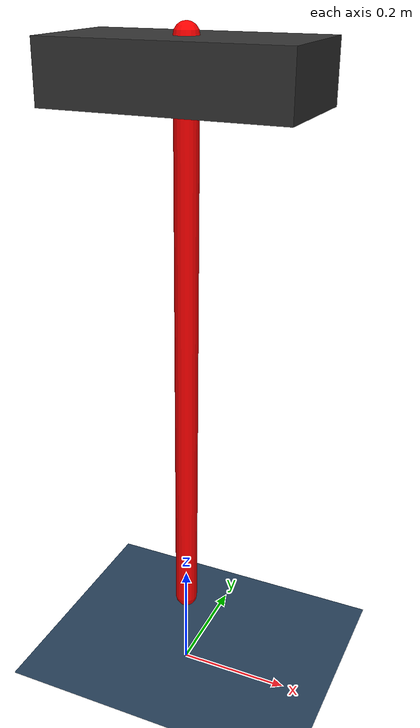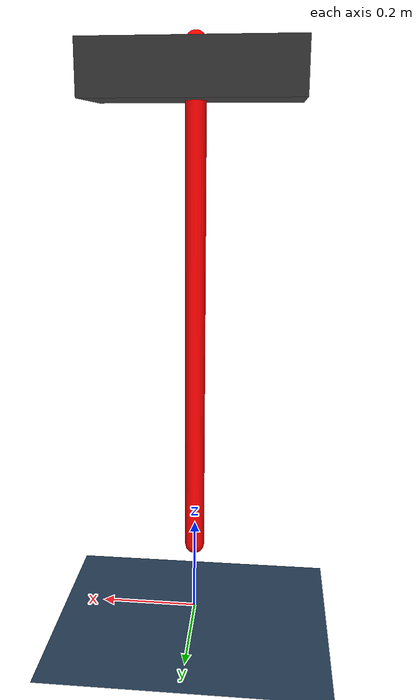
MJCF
<mujoco model="cartpole">
    <compiler angle="radian"/>

    <option integrator="implicitfast"
            timestep="0.01"
            gravity="0 0 -9.81"/>

    <asset>
        <texture type="skybox" builtin="gradient"
                 rgb1="0.6 0.7 0.9" rgb2="0.3 0.3 0.4"
                 width="512" height="3072"/>
        <texture type="2d" name="groundplane" builtin="checker"
                 mark="edge" rgb1="0.2 0.3 0.4"
                 rgb2="0.1 0.2 0.3"
                 markrgb="0.8 0.8 0.8"
                 width="300" height="300"/>
        <material name="groundplane"
                  texture="groundplane"
                  texuniform="true"
                  texrepeat="5 5"
                  reflectance="0.2"/>
    </asset>

    <worldbody>
        <!-- Lights -->
        <light name="global_light" directional="true"
               diffuse="1 1 1" specular="0.3 0.3 0.3"
               castshadow="false"/>
        <light pos="-5 0 10"/>
        <light pos="0 0 10"/>
        <light pos="5 0 10"/>

        <!-- Floor -->
        <geom name="floor" type="plane"
              pos="0 0 0"
              size="0 0 0.05"
              material="groundplane"/>

        <camera name="fixed" pos="0 -4 1.5" xyaxes="1 0 0 0 0 1"/>

        <!-- Cart -->
        <body name="cart" pos="0 0 1.1">

            <joint name="cart_slide"
                type="slide"
                axis="1 0 0"
                stiffness="5"
                damping="1"/>

            <geom name="cart_geom"
                  type="box"
                  size="0.2 0.1 0.05"
                  rgba="0.2 0.2 0.2 1"
                  mass="1"/>

            <!-- Pole -->
            <body name="pole" pos="0 0 0.05">
                <joint name="pole_hinge"
                       type="hinge"
                       axis="0 1 0"
                       damping="0.05"/>

                <geom name="pole_geom"
                      type="capsule"
                      fromto="0 0 0 0 0 -1"
                      size="0.02"
                      mass="0.5"
                      rgba="1 0 0 1"/>
            </body>
        </body>
    </worldbody>

    <actuator>
        <!-- Control force applied to cart -->
        <motor joint="cart_slide"
               ctrlrange="-1 1"
               gear="5"/>
    </actuator>
</mujoco>
